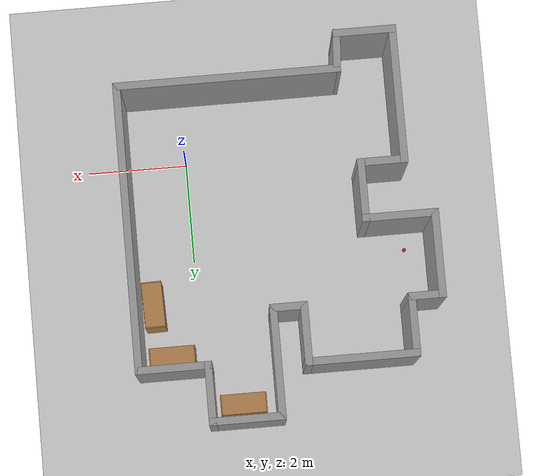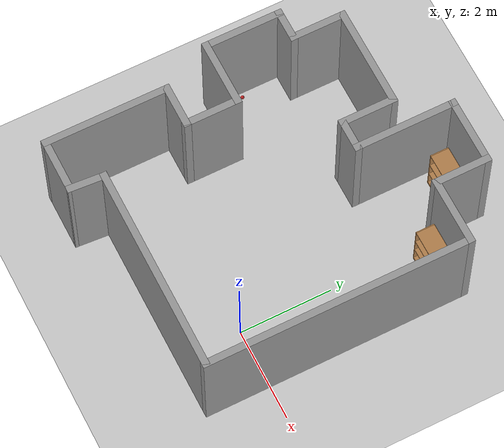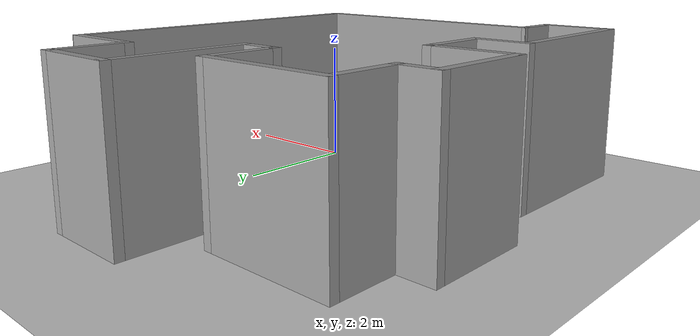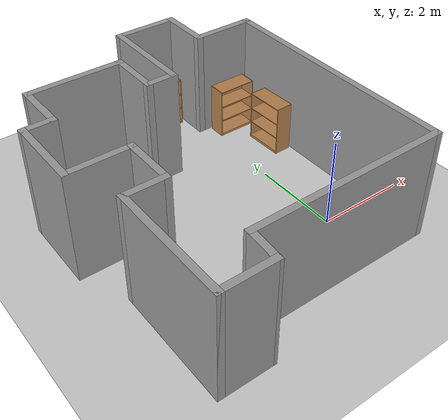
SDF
<sdf version="1.7">
 <world name="default">
  <light name="sun" type="directional">
   <pose>0 0 10 0 -0 0</pose>
   <diffuse>0.8 0.8 0.8 1</diffuse>
   <specular>0.2 0.2 0.2 1</specular>
   <attenuation>
    <range>1000</range>
    <constant>0.9</constant>
    <linear>0.01</linear>
    <quadratic>0.001</quadratic>
   </attenuation>
   <direction>-0.5 0.1 -0.9</direction>
   <spot><inner_angle>0</inner_angle><outer_angle>0</outer_angle><falloff>0</falloff></spot>
  </light>
  <model name="ground_plane">
   <static>1</static>
   <link name="link">
    <collision name="collision">
     <geometry><plane><normal>0 0 1</normal><size>100 100</size></plane></geometry>
     <surface>
      <contact><collide_bitmask>65535</collide_bitmask></contact>
      <friction><ode><mu>100</mu><mu2>50</mu2></ode></friction>
     </surface>
    </collision>
    <visual name="visual">
     <cast_shadows>0</cast_shadows>
     <geometry><plane><normal>0 0 1</normal><size>100 100</size></plane></geometry>
     <material>
      <script><uri>file://media/materials/scripts/gazebo.material</uri><name>Gazebo/Grey</name></script>
     </material>
    </visual>
   </link>
  </model>
  <gravity>0 0 -9.8</gravity>
  <magnetic_field>6e-06 2.3e-05 -4.2e-05</magnetic_field>
  <atmosphere type="adiabatic"/>
  <physics type="ode">
   <max_step_size>0.001</max_step_size>
   <real_time_factor>1</real_time_factor>
   <real_time_update_rate>1000</real_time_update_rate>
  </physics>
  <scene><ambient>0.4 0.4 0.4 1</ambient><background>0.7 0.7 0.7 1</background><shadows>1</shadows></scene>
  <spherical_coordinates>
   <surface_model>EARTH_WGS84</surface_model>
   <latitude_deg>0</latitude_deg>
   <longitude_deg>0</longitude_deg>
   <elevation>0</elevation>
   <heading_deg>0</heading_deg>
  </spherical_coordinates>
  <model name="Untitled">
   <pose>-1.78899 1.68577 0 0 -0 0</pose>
   <link name="Wall_0">
    <collision name="Wall_0_Collision">
     <geometry><box><size>4.5 0.15 2.5</size></box></geometry>
     <pose>0 0 1.25 0 -0 0</pose>
    </collision>
    <visual name="Wall_0_Visual">
     <pose>0 0 1.25 0 -0 0</pose>
     <geometry><box><size>4.5 0.15 2.5</size></box></geometry>
     <material>
      <script><uri>file://media/materials/scripts/gazebo.material</uri><name>Gazebo/Grey</name></script>
      <ambient>1 1 1 1</ambient>
     </material>
     <meta><layer>0</layer></meta>
    </visual>
    <pose>0.825 -2.99742 0 0 -0 0</pose>
   </link>
   <link name="Wall_1">
    <collision name="Wall_1_Collision">
     <geometry><box><size>5.75 0.15 2.5</size></box></geometry>
     <pose>0 0 1.25 0 -0 0</pose>
    </collision>
    <visual name="Wall_1_Visual">
     <pose>0 0 1.25 0 -0 0</pose>
     <geometry><box><size>5.75 0.15 2.5</size></box></geometry>
     <material>
      <script><uri>file://media/materials/scripts/gazebo.material</uri><name>Gazebo/Grey</name></script>
      <ambient>1 1 1 1</ambient>
     </material>
     <meta><layer>0</layer></meta>
    </visual>
    <pose>3 -0.197423 0 0 -0 1.5708</pose>
   </link>
   <link name="Wall_10">
    <collision name="Wall_10_Collision">
     <geometry><box><size>0.75 0.15 2.5</size></box></geometry>
     <pose>0 0 1.25 0 -0 0</pose>
    </collision>
    <visual name="Wall_10_Visual">
     <pose>0 0 1.25 0 -0 0</pose>
     <geometry><box><size>0.75 0.15 2.5</size></box></geometry>
     <material>
      <script><uri>file://media/materials/scripts/gazebo.material</uri><name>Gazebo/Grey</name></script>
      <ambient>1 1 1 1</ambient>
     </material>
     <meta><layer>0</layer></meta>
    </visual>
    <pose>-2.7 1.60258 0 0 -0 3.14159</pose>
   </link>
   <link name="Wall_11">
    <collision name="Wall_11_Collision">
     <geometry><box><size>1.75 0.15 2.5</size></box></geometry>
     <pose>0 0 1.25 0 -0 0</pose>
    </collision>
    <visual name="Wall_11_Visual">
     <pose>0 0 1.25 0 -0 0</pose>
     <geometry><box><size>1.75 0.15 2.5</size></box></geometry>
     <material>
      <script><uri>file://media/materials/scripts/gazebo.material</uri><name>Gazebo/Grey</name></script>
      <ambient>1 1 1 1</ambient>
     </material>
     <meta><layer>0</layer></meta>
    </visual>
    <pose>-3 0.802577 0 0 -0 -1.5708</pose>
   </link>
   <link name="Wall_12">
    <collision name="Wall_12_Collision">
     <geometry><box><size>1.5 0.15 2.5</size></box></geometry>
     <pose>0 0 1.25 0 -0 0</pose>
    </collision>
    <visual name="Wall_12_Visual">
     <pose>0 0 1.25 0 -0 0</pose>
     <geometry><box><size>1.5 0.15 2.5</size></box></geometry>
     <material>
      <script><uri>file://media/materials/scripts/gazebo.material</uri><name>Gazebo/Grey</name></script>
      <ambient>1 1 1 1</ambient>
     </material>
     <meta><layer>0</layer></meta>
    </visual>
    <pose>-2.325 0.002576 0 0 -0 0</pose>
   </link>
   <link name="Wall_13">
    <collision name="Wall_13_Collision">
     <geometry><box><size>1.25 0.15 2.5</size></box></geometry>
     <pose>0 0 1.25 0 -0 0</pose>
    </collision>
    <visual name="Wall_13_Visual">
     <pose>0 0 1.25 0 -0 0</pose>
     <geometry><box><size>1.25 0.15 2.5</size></box></geometry>
     <material>
      <script><uri>file://media/materials/scripts/gazebo.material</uri><name>Gazebo/Grey</name></script>
      <ambient>1 1 1 1</ambient>
     </material>
     <meta><layer>0</layer></meta>
    </visual>
    <pose>-1.65 -0.547423 0 0 -0 -1.5708</pose>
   </link>
   <link name="Wall_14">
    <collision name="Wall_14_Collision">
     <geometry><box><size>1 0.15 2.5</size></box></geometry>
     <pose>0 0 1.25 0 -0 0</pose>
    </collision>
    <visual name="Wall_14_Visual">
     <pose>0 0 1.25 0 -0 0</pose>
     <geometry><box><size>1 0.15 2.5</size></box></geometry>
     <material>
      <script><uri>file://media/materials/scripts/gazebo.material</uri><name>Gazebo/Grey</name></script>
      <ambient>1 1 1 1</ambient>
     </material>
     <meta><layer>0</layer></meta>
    </visual>
    <pose>-2.075 -1.09742 0 0 -0 3.14159</pose>
   </link>
   <link name="Wall_15">
    <collision name="Wall_15_Collision">
     <geometry><box><size>2.75 0.15 2.5</size></box></geometry>
     <pose>0 0 1.25 0 -0 0</pose>
    </collision>
    <visual name="Wall_15_Visual">
     <pose>0 0 1.25 0 -0 0</pose>
     <geometry><box><size>2.75 0.15 2.5</size></box></geometry>
     <material>
      <script><uri>file://media/materials/scripts/gazebo.material</uri><name>Gazebo/Grey</name></script>
      <ambient>1 1 1 1</ambient>
     </material>
     <meta><layer>0</layer></meta>
    </visual>
    <pose>-2.5 -2.39742 0 0 -0 -1.5708</pose>
   </link>
   <link name="Wall_16">
    <collision name="Wall_16_Collision">
     <geometry><box><size>1.25 0.15 2.5</size></box></geometry>
     <pose>0 0 1.25 0 -0 0</pose>
    </collision>
    <visual name="Wall_16_Visual">
     <pose>0 0 1.25 0 -0 0</pose>
     <geometry><box><size>1.25 0.15 2.5</size></box></geometry>
     <material>
      <script><uri>file://media/materials/scripts/gazebo.material</uri><name>Gazebo/Grey</name></script>
      <ambient>1 1 1 1</ambient>
     </material>
     <meta><layer>0</layer></meta>
    </visual>
    <pose>-1.95 -3.69742 0 0 -0 0</pose>
   </link>
   <link name="Wall_17">
    <collision name="Wall_17_Collision">
     <geometry><box><size>0.851783 0.15 2.5</size></box></geometry>
     <pose>0 0 1.25 0 -0 0</pose>
    </collision>
    <visual name="Wall_17_Visual">
     <pose>0 0 1.25 0 -0 0</pose>
     <geometry><box><size>0.851783 0.15 2.5</size></box></geometry>
     <material>
      <script><uri>file://media/materials/scripts/gazebo.material</uri><name>Gazebo/Grey</name></script>
      <ambient>1 1 1 1</ambient>
     </material>
     <meta><layer>0</layer></meta>
    </visual>
    <pose>-1.375 -3.34742 0 0 -0 1.49949</pose>
   </link>
   <link name="Wall_2">
    <collision name="Wall_2_Collision">
     <geometry><box><size>1.5 0.15 2.5</size></box></geometry>
     <pose>0 0 1.25 0 -0 0</pose>
    </collision>
    <visual name="Wall_2_Visual">
     <pose>0 0 1.25 0 -0 0</pose>
     <geometry><box><size>1.5 0.15 2.5</size></box></geometry>
     <material>
      <script><uri>file://media/materials/scripts/gazebo.material</uri><name>Gazebo/Grey</name></script>
      <ambient>1 1 1 1</ambient>
     </material>
     <meta><layer>0</layer></meta>
    </visual>
    <pose>2.325 2.60258 0 0 -0 3.14159</pose>
   </link>
   <link name="Wall_3">
    <collision name="Wall_3_Collision">
     <geometry><box><size>1.25 0.15 2.5</size></box></geometry>
     <pose>0 0 1.25 0 -0 0</pose>
    </collision>
    <visual name="Wall_3_Visual">
     <pose>0 0 1.25 0 -0 0</pose>
     <geometry><box><size>1.25 0.15 2.5</size></box></geometry>
     <material>
      <script><uri>file://media/materials/scripts/gazebo.material</uri><name>Gazebo/Grey</name></script>
      <ambient>1 1 1 1</ambient>
     </material>
     <meta><layer>0</layer></meta>
    </visual>
    <pose>1.65 3.15258 0 0 -0 1.5708</pose>
   </link>
   <link name="Wall_4">
    <collision name="Wall_4_Collision">
     <geometry><box><size>1.5 0.15 2.5</size></box></geometry>
     <pose>0 0 1.25 0 -0 0</pose>
    </collision>
    <visual name="Wall_4_Visual">
     <pose>0 0 1.25 0 -0 0</pose>
     <geometry><box><size>1.5 0.15 2.5</size></box></geometry>
     <material>
      <script><uri>file://media/materials/scripts/gazebo.material</uri><name>Gazebo/Grey</name></script>
      <ambient>1 1 1 1</ambient>
     </material>
     <meta><layer>0</layer></meta>
    </visual>
    <pose>0.975 3.70258 0 0 -0 3.14159</pose>
   </link>
   <link name="Wall_5">
    <collision name="Wall_5_Collision">
     <geometry><box><size>2.25 0.15 2.5</size></box></geometry>
     <pose>0 0 1.25 0 -0 0</pose>
    </collision>
    <visual name="Wall_5_Visual">
     <pose>0 0 1.25 0 -0 0</pose>
     <geometry><box><size>2.25 0.15 2.5</size></box></geometry>
     <material>
      <script><uri>file://media/materials/scripts/gazebo.material</uri><name>Gazebo/Grey</name></script>
      <ambient>1 1 1 1</ambient>
     </material>
     <meta><layer>0</layer></meta>
    </visual>
    <pose>0.3 2.65258 0 0 -0 -1.5708</pose>
   </link>
   <link name="Wall_6">
    <collision name="Wall_6_Collision">
     <geometry><box><size>0.75 0.15 2.5</size></box></geometry>
     <pose>0 0 1.25 0 -0 0</pose>
    </collision>
    <visual name="Wall_6_Visual">
     <pose>0 0 1.25 0 -0 0</pose>
     <geometry><box><size>0.75 0.15 2.5</size></box></geometry>
     <material>
      <script><uri>file://media/materials/scripts/gazebo.material</uri><name>Gazebo/Grey</name></script>
      <ambient>1 1 1 1</ambient>
     </material>
     <meta><layer>0</layer></meta>
    </visual>
    <pose>-0 1.60258 0 0 -0 3.14159</pose>
   </link>
   <link name="Wall_7">
    <collision name="Wall_7_Collision">
     <geometry><box><size>1.25 0.15 2.5</size></box></geometry>
     <pose>0 0 1.25 0 -0 0</pose>
    </collision>
    <visual name="Wall_7_Visual">
     <pose>0 0 1.25 0 -0 0</pose>
     <geometry><box><size>1.25 0.15 2.5</size></box></geometry>
     <material>
      <script><uri>file://media/materials/scripts/gazebo.material</uri><name>Gazebo/Grey</name></script>
      <ambient>1 1 1 1</ambient>
     </material>
     <meta><layer>0</layer></meta>
    </visual>
    <pose>-0.3 2.15258 0 0 -0 1.5708</pose>
   </link>
   <link name="Wall_8">
    <collision name="Wall_8_Collision">
     <geometry><box><size>2.25 0.15 2.5</size></box></geometry>
     <pose>0 0 1.25 0 -0 0</pose>
    </collision>
    <visual name="Wall_8_Visual">
     <pose>0 0 1.25 0 -0 0</pose>
     <geometry><box><size>2.25 0.15 2.5</size></box></geometry>
     <material>
      <script><uri>file://media/materials/scripts/gazebo.material</uri><name>Gazebo/Grey</name></script>
      <ambient>1 1 1 1</ambient>
     </material>
     <meta><layer>0</layer></meta>
    </visual>
    <pose>-1.35 2.70258 0 0 -0 3.14159</pose>
   </link>
   <link name="Wall_9">
    <collision name="Wall_9_Collision">
     <geometry><box><size>1.25 0.15 2.5</size></box></geometry>
     <pose>0 0 1.25 0 -0 0</pose>
    </collision>
    <visual name="Wall_9_Visual">
     <pose>0 0 1.25 0 -0 0</pose>
     <geometry><box><size>1.25 0.15 2.5</size></box></geometry>
     <material>
      <script><uri>file://media/materials/scripts/gazebo.material</uri><name>Gazebo/Grey</name></script>
      <ambient>1 1 1 1</ambient>
     </material>
     <meta><layer>0</layer></meta>
    </visual>
    <pose>-2.4 2.15258 0 0 -0 -1.5708</pose>
   </link>
   <static>1</static>
  </model>
  <model name="bookshelf">
   <static>1</static>
   <link name="link">
    <inertial><mass>1</mass></inertial>
    <collision name="back">
     <pose>0 0.005 0.6 0 -0 0</pose>
     <geometry><box><size>0.9 0.01 1.2</size></box></geometry>
    </collision>
    <visual name="visual1">
     <pose>0 0.005 0.6 0 -0 0</pose>
     <geometry><box><size>0.9 0.01 1.2</size></box></geometry>
     <material>
      <script><uri>file://media/materials/scripts/gazebo.material</uri><name>Gazebo/Wood</name></script>
     </material>
    </visual>
    <collision name="left_side">
     <pose>0.45 -0.195 0.6 0 -0 0</pose>
     <geometry><box><size>0.02 0.4 1.2</size></box></geometry>
    </collision>
    <visual name="visual2">
     <pose>0.45 -0.195 0.6 0 -0 0</pose>
     <geometry><box><size>0.02 0.4 1.2</size></box></geometry>
     <material>
      <script><uri>file://media/materials/scripts/gazebo.material</uri><name>Gazebo/Wood</name></script>
     </material>
    </visual>
    <collision name="right_side">
     <pose>-0.45 -0.195 0.6 0 -0 0</pose>
     <geometry><box><size>0.02 0.4 1.2</size></box></geometry>
    </collision>
    <visual name="visual3">
     <pose>-0.45 -0.195 0.6 0 -0 0</pose>
     <geometry><box><size>0.02 0.4 1.2</size></box></geometry>
     <material>
      <script><uri>file://media/materials/scripts/gazebo.material</uri><name>Gazebo/Wood</name></script>
     </material>
    </visual>
    <collision name="bottom">
     <pose>0 -0.195 0.03 0 -0 0</pose>
     <geometry><box><size>0.88 0.4 0.06</size></box></geometry>
    </collision>
    <visual name="visual4">
     <pose>0 -0.195 0.03 0 -0 0</pose>
     <geometry><box><size>0.88 0.4 0.06</size></box></geometry>
     <material>
      <script><uri>file://media/materials/scripts/gazebo.material</uri><name>Gazebo/Wood</name></script>
     </material>
    </visual>
    <collision name="top">
     <pose>0 -0.195 1.19 0 -0 0</pose>
     <geometry><box><size>0.88 0.4 0.02</size></box></geometry>
    </collision>
    <visual name="visual5">
     <pose>0 -0.195 1.19 0 -0 0</pose>
     <geometry><box><size>0.88 0.4 0.02</size></box></geometry>
     <material>
      <script><uri>file://media/materials/scripts/gazebo.material</uri><name>Gazebo/Wood</name></script>
     </material>
    </visual>
    <collision name="low_shelf">
     <pose>0 -0.195 0.43 0 -0 0</pose>
     <geometry><box><size>0.88 0.4 0.02</size></box></geometry>
    </collision>
    <visual name="visual6">
     <pose>0 -0.195 0.43 0 -0 0</pose>
     <geometry><box><size>0.88 0.4 0.02</size></box></geometry>
     <material>
      <script><uri>file://media/materials/scripts/gazebo.material</uri><name>Gazebo/Wood</name></script>
     </material>
    </visual>
    <collision name="high_shelf">
     <pose>0 -0.195 0.8 0 -0 0</pose>
     <geometry><box><size>0.88 0.4 0.02</size></box></geometry>
    </collision>
    <visual name="visual7">
     <pose>0 -0.195 0.8 0 -0 0</pose>
     <geometry><box><size>0.88 0.4 0.02</size></box></geometry>
     <material>
      <script><uri>file://media/materials/scripts/gazebo.material</uri><name>Gazebo/Wood</name></script>
     </material>
    </visual>
   </link>
   <pose>0.57312 4.16828 0 0 -0 0</pose>
  </model>
  <model name="bookshelf_0">
   <static>1</static>
   <link name="link">
    <inertial><mass>1</mass></inertial>
    <collision name="back">
     <pose>0 0.005 0.6 0 -0 0</pose>
     <geometry><box><size>0.9 0.01 1.2</size></box></geometry>
    </collision>
    <visual name="visual1">
     <pose>0 0.005 0.6 0 -0 0</pose>
     <geometry><box><size>0.9 0.01 1.2</size></box></geometry>
     <material>
      <script><uri>file://media/materials/scripts/gazebo.material</uri><name>Gazebo/Wood</name></script>
     </material>
    </visual>
    <collision name="left_side">
     <pose>0.45 -0.195 0.6 0 -0 0</pose>
     <geometry><box><size>0.02 0.4 1.2</size></box></geometry>
    </collision>
    <visual name="visual2">
     <pose>0.45 -0.195 0.6 0 -0 0</pose>
     <geometry><box><size>0.02 0.4 1.2</size></box></geometry>
     <material>
      <script><uri>file://media/materials/scripts/gazebo.material</uri><name>Gazebo/Wood</name></script>
     </material>
    </visual>
    <collision name="right_side">
     <pose>-0.45 -0.195 0.6 0 -0 0</pose>
     <geometry><box><size>0.02 0.4 1.2</size></box></geometry>
    </collision>
    <visual name="visual3">
     <pose>-0.45 -0.195 0.6 0 -0 0</pose>
     <geometry><box><size>0.02 0.4 1.2</size></box></geometry>
     <material>
      <script><uri>file://media/materials/scripts/gazebo.material</uri><name>Gazebo/Wood</name></script>
     </material>
    </visual>
    <collision name="bottom">
     <pose>0 -0.195 0.03 0 -0 0</pose>
     <geometry><box><size>0.88 0.4 0.06</size></box></geometry>
    </collision>
    <visual name="visual4">
     <pose>0 -0.195 0.03 0 -0 0</pose>
     <geometry><box><size>0.88 0.4 0.06</size></box></geometry>
     <material>
      <script><uri>file://media/materials/scripts/gazebo.material</uri><name>Gazebo/Wood</name></script>
     </material>
    </visual>
    <collision name="top">
     <pose>0 -0.195 1.19 0 -0 0</pose>
     <geometry><box><size>0.88 0.4 0.02</size></box></geometry>
    </collision>
    <visual name="visual5">
     <pose>0 -0.195 1.19 0 -0 0</pose>
     <geometry><box><size>0.88 0.4 0.02</size></box></geometry>
     <material>
      <script><uri>file://media/materials/scripts/gazebo.material</uri><name>Gazebo/Wood</name></script>
     </material>
    </visual>
    <collision name="low_shelf">
     <pose>0 -0.195 0.43 0 -0 0</pose>
     <geometry><box><size>0.88 0.4 0.02</size></box></geometry>
    </collision>
    <visual name="visual6">
     <pose>0 -0.195 0.43 0 -0 0</pose>
     <geometry><box><size>0.88 0.4 0.02</size></box></geometry>
     <material>
      <script><uri>file://media/materials/scripts/gazebo.material</uri><name>Gazebo/Wood</name></script>
     </material>
    </visual>
    <collision name="high_shelf">
     <pose>0 -0.195 0.8 0 -0 0</pose>
     <geometry><box><size>0.88 0.4 0.02</size></box></geometry>
    </collision>
    <visual name="visual7">
     <pose>0 -0.195 0.8 0 -0 0</pose>
     <geometry><box><size>0.88 0.4 0.02</size></box></geometry>
     <material>
      <script><uri>file://media/materials/scripts/gazebo.material</uri><name>Gazebo/Wood</name></script>
     </material>
    </visual>
   </link>
   <pose>-0.765183 5.21045 0 0 -0 0</pose>
  </model>
  <model name="bookshelf_1">
   <static>1</static>
   <link name="link">
    <inertial><mass>1</mass></inertial>
    <collision name="back">
     <pose>0 0.005 0.6 0 -0 0</pose>
     <geometry><box><size>0.9 0.01 1.2</size></box></geometry>
    </collision>
    <visual name="visual1">
     <pose>0 0.005 0.6 0 -0 0</pose>
     <geometry><box><size>0.9 0.01 1.2</size></box></geometry>
     <material>
      <script><uri>file://media/materials/scripts/gazebo.material</uri><name>Gazebo/Wood</name></script>
     </material>
    </visual>
    <collision name="left_side">
     <pose>0.45 -0.195 0.6 0 -0 0</pose>
     <geometry><box><size>0.02 0.4 1.2</size></box></geometry>
    </collision>
    <visual name="visual2">
     <pose>0.45 -0.195 0.6 0 -0 0</pose>
     <geometry><box><size>0.02 0.4 1.2</size></box></geometry>
     <material>
      <script><uri>file://media/materials/scripts/gazebo.material</uri><name>Gazebo/Wood</name></script>
     </material>
    </visual>
    <collision name="right_side">
     <pose>-0.45 -0.195 0.6 0 -0 0</pose>
     <geometry><box><size>0.02 0.4 1.2</size></box></geometry>
    </collision>
    <visual name="visual3">
     <pose>-0.45 -0.195 0.6 0 -0 0</pose>
     <geometry><box><size>0.02 0.4 1.2</size></box></geometry>
     <material>
      <script><uri>file://media/materials/scripts/gazebo.material</uri><name>Gazebo/Wood</name></script>
     </material>
    </visual>
    <collision name="bottom">
     <pose>0 -0.195 0.03 0 -0 0</pose>
     <geometry><box><size>0.88 0.4 0.06</size></box></geometry>
    </collision>
    <visual name="visual4">
     <pose>0 -0.195 0.03 0 -0 0</pose>
     <geometry><box><size>0.88 0.4 0.06</size></box></geometry>
     <material>
      <script><uri>file://media/materials/scripts/gazebo.material</uri><name>Gazebo/Wood</name></script>
     </material>
    </visual>
    <collision name="top">
     <pose>0 -0.195 1.19 0 -0 0</pose>
     <geometry><box><size>0.88 0.4 0.02</size></box></geometry>
    </collision>
    <visual name="visual5">
     <pose>0 -0.195 1.19 0 -0 0</pose>
     <geometry><box><size>0.88 0.4 0.02</size></box></geometry>
     <material>
      <script><uri>file://media/materials/scripts/gazebo.material</uri><name>Gazebo/Wood</name></script>
     </material>
    </visual>
    <collision name="low_shelf">
     <pose>0 -0.195 0.43 0 -0 0</pose>
     <geometry><box><size>0.88 0.4 0.02</size></box></geometry>
    </collision>
    <visual name="visual6">
     <pose>0 -0.195 0.43 0 -0 0</pose>
     <geometry><box><size>0.88 0.4 0.02</size></box></geometry>
     <material>
      <script><uri>file://media/materials/scripts/gazebo.material</uri><name>Gazebo/Wood</name></script>
     </material>
    </visual>
    <collision name="high_shelf">
     <pose>0 -0.195 0.8 0 -0 0</pose>
     <geometry><box><size>0.88 0.4 0.02</size></box></geometry>
    </collision>
    <visual name="visual7">
     <pose>0 -0.195 0.8 0 -0 0</pose>
     <geometry><box><size>0.88 0.4 0.02</size></box></geometry>
     <material>
      <script><uri>file://media/materials/scripts/gazebo.material</uri><name>Gazebo/Wood</name></script>
     </material>
    </visual>
   </link>
   <pose>1.06462 2.9098 0 0 0 -1.54262</pose>
  </model>
  <model name="cricket_ball">
   <link name="link">
    <pose>0 0 0.0375 0 -0 0</pose>
    <inertial>
     <mass>0.1467</mass>
     <inertia>
      <ixx>8.25187e-05</ixx>
      <ixy>0</ixy>
      <ixz>0</ixz>
      <iyy>8.25187e-05</iyy>
      <iyz>0</iyz>
      <izz>8.25187e-05</izz>
     </inertia>
    </inertial>
    <collision name="collision">
     <geometry><sphere><radius>0.0375</radius></sphere></geometry>
     <surface>
      <contact>
       <poissons_ratio>0.347</poissons_ratio>
       <elastic_modulus>8.8e+09</elastic_modulus>
       <ode><kp>100000</kp><kd>100</kd><max_vel>100</max_vel><min_depth>0.001</min_depth></ode>
      </contact>
      <friction>
       <torsional>
        <coefficient>1</coefficient>
        <use_patch_radius>0</use_patch_radius>
        <surface_radius>0.01</surface_radius>
       </torsional>
      </friction>
     </surface>
    </collision>
    <visual name="visual">
     <geometry><sphere><radius>0.0375</radius></sphere></geometry>
     <material>
      <script><uri>file://media/materials/scripts/gazebo.material</uri><name>Gazebo/Red</name></script>
     </material>
    </visual>
    <velocity_decay><linear>0</linear><angular>0.005</angular></velocity_decay>
   </link>
   <pose>-4.23888 2.19356 0.773986 0 -0 0</pose>
  </model>
 </world>
</sdf>
